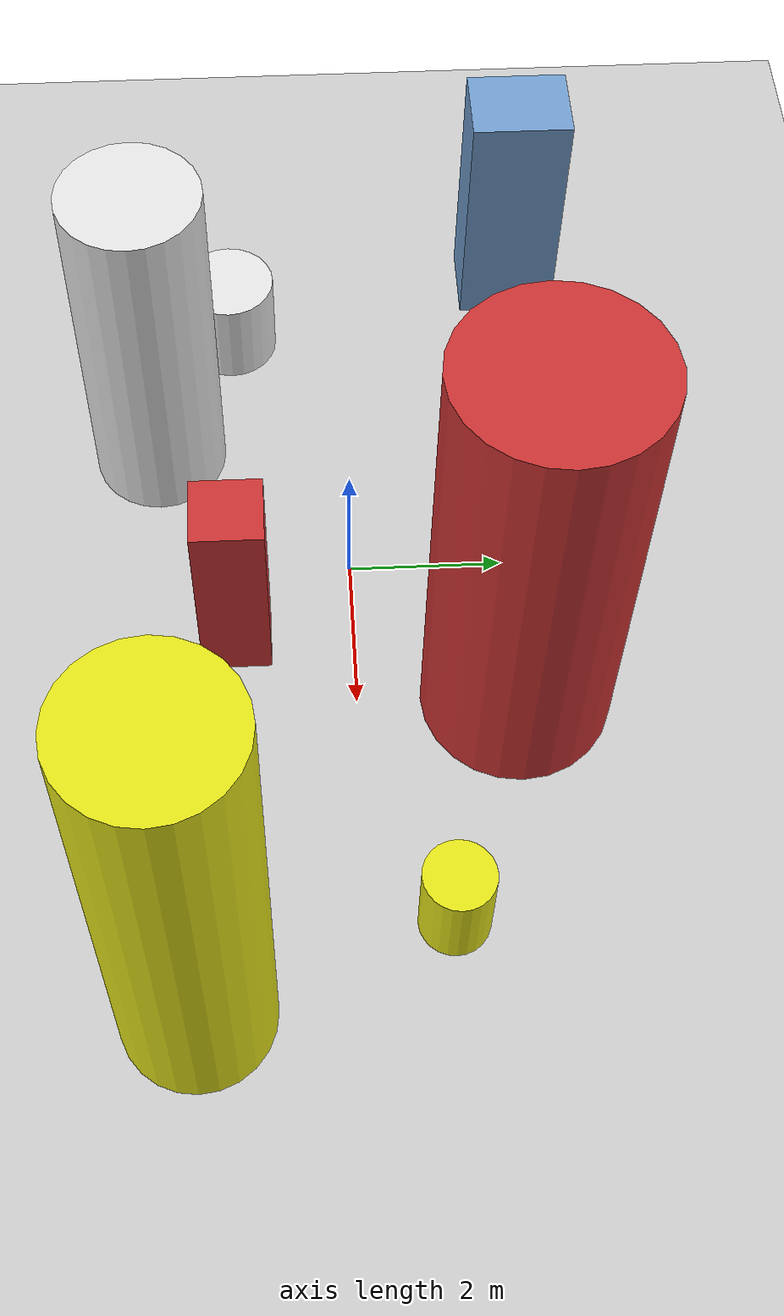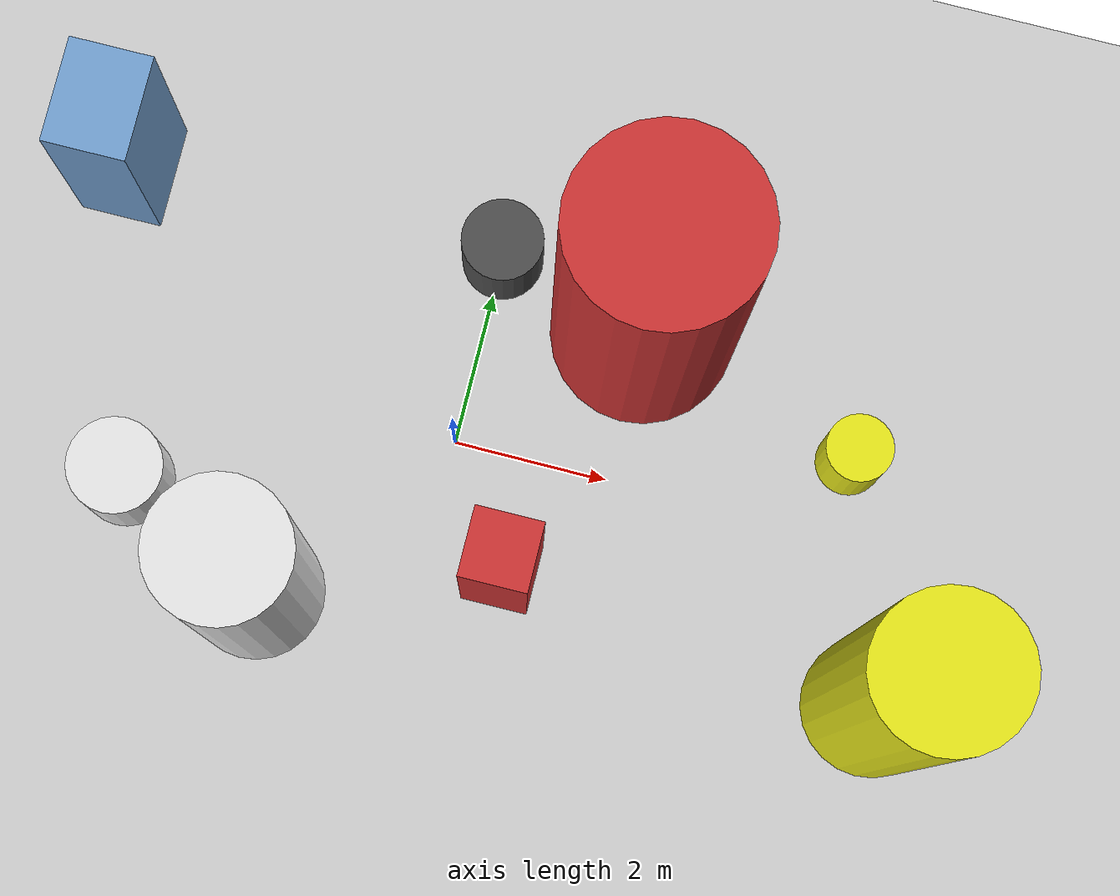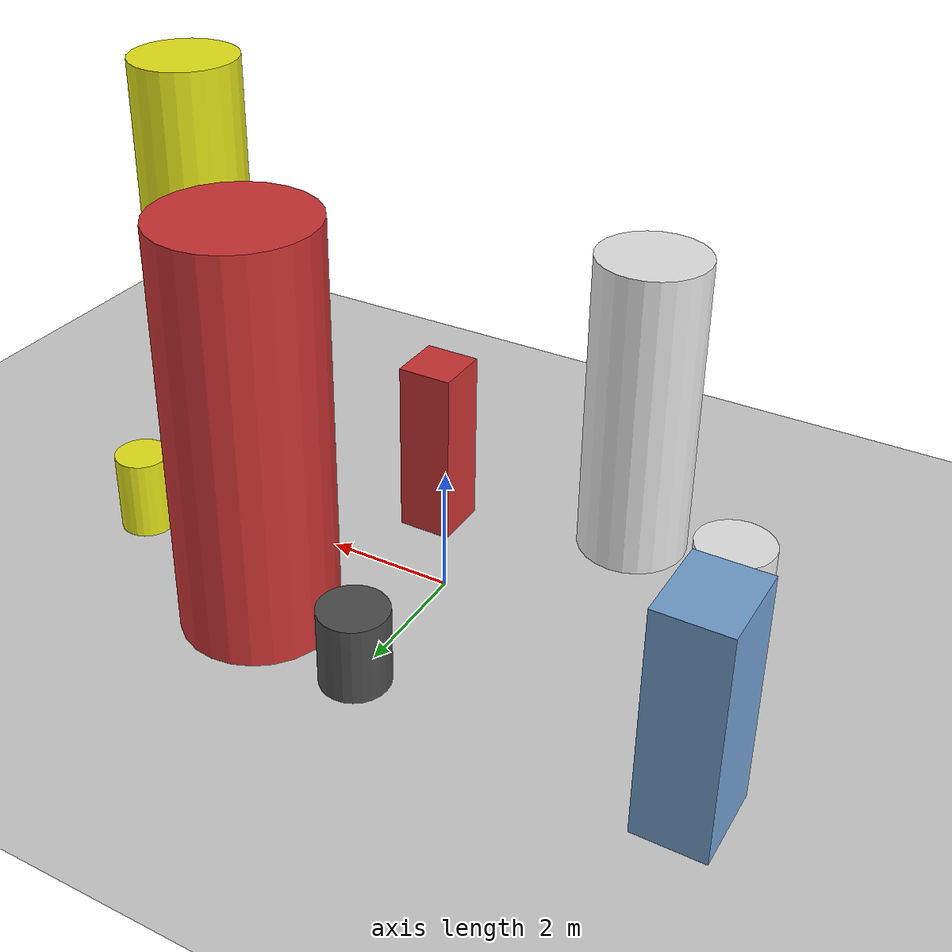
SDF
<?xml version='1.0'?>
<sdf version='1.6'>
  <world name='routeA_rl_v1__support_expansion__rl_test__mixed_3d_low_density_route__000172'>
    <!-- Sun light -->
    <light name='sun' type='directional'>
      <cast_shadows>1</cast_shadows>
      <pose>0 0 10 0 0 0</pose>
      <diffuse>0.8 0.8 0.8 1</diffuse>
      <specular>0.2 0.2 0.2 1</specular>
      <attenuation>
        <range>1000</range>
        <constant>0.9</constant>
        <linear>0.01</linear>
        <quadratic>0.001</quadratic>
      </attenuation>
      <direction>-0.5 0.1 -0.9</direction>
    </light>

    <!-- Ground plane -->
    <model name='ground_plane'>
      <static>1</static>
      <link name='link'>
        <collision name='collision'>
          <geometry>
            <plane>
              <normal>0 0 1</normal>
              <size>100 100</size>
            </plane>
          </geometry>
          <surface>
            <contact>
              <collide_bitmask>65535</collide_bitmask>
              <ode/>
            </contact>
            <friction>
              <ode>
                <mu>100</mu>
                <mu2>50</mu2>
              </ode>
              <torsional><ode/></torsional>
            </friction>
            <bounce/>
          </surface>
          <max_contacts>10</max_contacts>
        </collision>
        <visual name='visual'>
          <cast_shadows>0</cast_shadows>
          <geometry>
            <plane>
              <normal>0 0 1</normal>
              <size>100 100</size>
            </plane>
          </geometry>
          <material>
            <script>
              <uri>file://media/materials/scripts/gazebo.material</uri>
              <n>Gazebo/Grey</n>
            </script>
          </material>
        </visual>
      </link>
    </model>

    <!-- Environment -->
    <magnetic_field>6e-06 2.3e-05 -4.2e-05</magnetic_field>
    <atmosphere type='adiabatic'/>
    <physics name='default_physics' default='0' type='ode'>
      <gravity>0 0 -9.8</gravity>
      <max_step_size>0.004</max_step_size>
      <real_time_factor>1</real_time_factor>
      <real_time_update_rate>250</real_time_update_rate>
    </physics>
    <scene>
      <ambient>0.4 0.4 0.4 1</ambient>
      <background>0.7 0.7 0.7 1</background>
      <shadows>1</shadows>
    </scene>
    <wind/>
    <spherical_coordinates>
      <surface_model>EARTH_WGS84</surface_model>
      <latitude_deg>0</latitude_deg>
      <longitude_deg>0</longitude_deg>
      <elevation>0</elevation>
      <heading_deg>0</heading_deg>
    </spherical_coordinates>

    <!-- ============ OBSTACLES (8) ============ -->
    <model name='low_obs_0'>
      <static>1</static>
      <link name='link'>
        <visual name='visual'>
          <geometry>
            <cylinder>
              <radius>0.6179</radius>
              <length>1.3027</length>
            </cylinder>
          </geometry>
          <material>
            <script>
              <n>Gazebo/White</n>
              <uri>file://media/materials/scripts/gazebo.material</uri>
            </script>
            <ambient>0.9 0.9 0.9 1</ambient>
          </material>
        </visual>
        <collision name='collision'>
          <geometry>
            <cylinder>
              <radius>0.6179</radius>
              <length>1.3027</length>
            </cylinder>
          </geometry>
          <max_contacts>10</max_contacts>
          <surface>
            <contact><ode/></contact>
            <bounce/>
            <friction>
              <ode><mu>1</mu><mu2>1</mu2></ode>
              <torsional><ode/></torsional>
            </friction>
          </surface>
        </collision>
      </link>
      <pose>-4.0000 -1.5000 0.6514 0 0 0.0000</pose>
    </model>

    <model name='low_obs_1'>
      <static>1</static>
      <link name='link'>
        <visual name='visual'>
          <geometry>
            <cylinder>
              <radius>0.5305</radius>
              <length>1.2328</length>
            </cylinder>
          </geometry>
          <material>
            <script>
              <n>Gazebo/DarkGrey</n>
              <uri>file://media/materials/scripts/gazebo.material</uri>
            </script>
            <ambient>0.3 0.3 0.3 1</ambient>
          </material>
        </visual>
        <collision name='collision'>
          <geometry>
            <cylinder>
              <radius>0.5305</radius>
              <length>1.2328</length>
            </cylinder>
          </geometry>
          <max_contacts>10</max_contacts>
          <surface>
            <contact><ode/></contact>
            <bounce/>
            <friction>
              <ode><mu>1</mu><mu2>1</mu2></ode>
              <torsional><ode/></torsional>
            </friction>
          </surface>
        </collision>
      </link>
      <pose>0.0000 2.5000 0.6164 0 0 0.0000</pose>
    </model>

    <model name='low_obs_2'>
      <static>1</static>
      <link name='link'>
        <visual name='visual'>
          <geometry>
            <cylinder>
              <radius>0.4330</radius>
              <length>1.3028</length>
            </cylinder>
          </geometry>
          <material>
            <script>
              <n>Gazebo/Yellow</n>
              <uri>file://media/materials/scripts/gazebo.material</uri>
            </script>
            <ambient>0.9 0.9 0.1 1</ambient>
          </material>
        </visual>
        <collision name='collision'>
          <geometry>
            <cylinder>
              <radius>0.4330</radius>
              <length>1.3028</length>
            </cylinder>
          </geometry>
          <max_contacts>10</max_contacts>
          <surface>
            <contact><ode/></contact>
            <bounce/>
            <friction>
              <ode><mu>1</mu><mu2>1</mu2></ode>
              <torsional><ode/></torsional>
            </friction>
          </surface>
        </collision>
      </link>
      <pose>5.0000 1.0000 0.6514 0 0 0.0000</pose>
    </model>

    <model name='tall_obs_0'>
      <static>1</static>
      <link name='link'>
        <visual name='visual'>
          <geometry>
            <cylinder>
              <radius>0.8804</radius>
              <length>5.0122</length>
            </cylinder>
          </geometry>
          <material>
            <script>
              <n>Gazebo/White</n>
              <uri>file://media/materials/scripts/gazebo.material</uri>
            </script>
            <ambient>0.9 0.9 0.9 1</ambient>
          </material>
        </visual>
        <collision name='collision'>
          <geometry>
            <cylinder>
              <radius>0.8804</radius>
              <length>5.0122</length>
            </cylinder>
          </geometry>
          <max_contacts>10</max_contacts>
          <surface>
            <contact><ode/></contact>
            <bounce/>
            <friction>
              <ode><mu>1</mu><mu2>1</mu2></ode>
              <torsional><ode/></torsional>
            </friction>
          </surface>
        </collision>
      </link>
      <pose>-2.0000 -2.5000 2.5061 0 0 0.0000</pose>
    </model>

    <model name='tall_obs_1'>
      <static>1</static>
      <link name='link'>
        <visual name='visual'>
          <geometry>
            <cylinder>
              <radius>1.2009</radius>
              <length>6.4073</length>
            </cylinder>
          </geometry>
          <material>
            <script>
              <n>Gazebo/Red</n>
              <uri>file://media/materials/scripts/gazebo.material</uri>
            </script>
            <ambient>0.8 0.2 0.2 1</ambient>
          </material>
        </visual>
        <collision name='collision'>
          <geometry>
            <cylinder>
              <radius>1.2009</radius>
              <length>6.4073</length>
            </cylinder>
          </geometry>
          <max_contacts>10</max_contacts>
          <surface>
            <contact><ode/></contact>
            <bounce/>
            <friction>
              <ode><mu>1</mu><mu2>1</mu2></ode>
              <torsional><ode/></torsional>
            </friction>
          </surface>
        </collision>
      </link>
      <pose>2.0000 2.0000 3.2037 0 0 0.0000</pose>
    </model>

    <model name='tall_obs_2'>
      <static>1</static>
      <link name='link'>
        <visual name='visual'>
          <geometry>
            <cylinder>
              <radius>0.9141</radius>
              <length>6.8258</length>
            </cylinder>
          </geometry>
          <material>
            <script>
              <n>Gazebo/Yellow</n>
              <uri>file://media/materials/scripts/gazebo.material</uri>
            </script>
            <ambient>0.9 0.9 0.1 1</ambient>
          </material>
        </visual>
        <collision name='collision'>
          <geometry>
            <cylinder>
              <radius>0.9141</radius>
              <length>6.8258</length>
            </cylinder>
          </geometry>
          <max_contacts>10</max_contacts>
          <surface>
            <contact><ode/></contact>
            <bounce/>
            <friction>
              <ode><mu>1</mu><mu2>1</mu2></ode>
              <torsional><ode/></torsional>
            </friction>
          </surface>
        </collision>
      </link>
      <pose>6.0000 -2.0000 3.4129 0 0 0.0000</pose>
    </model>

    <model name='med_obs_0'>
      <static>1</static>
      <link name='link'>
        <visual name='visual'>
          <geometry>
            <box>
              <size>1.0594 1.3267 3.4882</size>
            </box>
          </geometry>
          <material>
            <script>
              <n>Gazebo/Blue</n>
              <uri>file://media/materials/scripts/gazebo.material</uri>
            </script>
            <ambient>0.447 0.624 0.812 1</ambient>
          </material>
        </visual>
        <collision name='collision'>
          <geometry>
            <box>
              <size>1.0594 1.3267 3.4882</size>
            </box>
          </geometry>
          <max_contacts>10</max_contacts>
          <surface>
            <contact><ode/></contact>
            <bounce/>
            <friction>
              <ode><mu>1</mu><mu2>1</mu2></ode>
              <torsional><ode/></torsional>
            </friction>
          </surface>
        </collision>
      </link>
      <pose>-5.0000 2.5000 1.7441 0 0 0.0000</pose>
    </model>

    <model name='med_obs_1'>
      <static>1</static>
      <link name='link'>
        <visual name='visual'>
          <geometry>
            <box>
              <size>0.8685 0.8856 2.8691</size>
            </box>
          </geometry>
          <material>
            <script>
              <n>Gazebo/Red</n>
              <uri>file://media/materials/scripts/gazebo.material</uri>
            </script>
            <ambient>0.8 0.2 0.2 1</ambient>
          </material>
        </visual>
        <collision name='collision'>
          <geometry>
            <box>
              <size>0.8685 0.8856 2.8691</size>
            </box>
          </geometry>
          <max_contacts>10</max_contacts>
          <surface>
            <contact><ode/></contact>
            <bounce/>
            <friction>
              <ode><mu>1</mu><mu2>1</mu2></ode>
              <torsional><ode/></torsional>
            </friction>
          </surface>
        </collision>
      </link>
      <pose>1.0000 -1.5000 1.4345 0 0 0.0000</pose>
    </model>

    <!-- GUI camera -->
    <gui fullscreen='0'>
      <camera name='user_camera'>
        <pose>-15 0 18 0 0.85 0.15</pose>
        <view_controller>orbit</view_controller>
        <projection_type>perspective</projection_type>
      </camera>
    </gui>
  </world>
</sdf>
